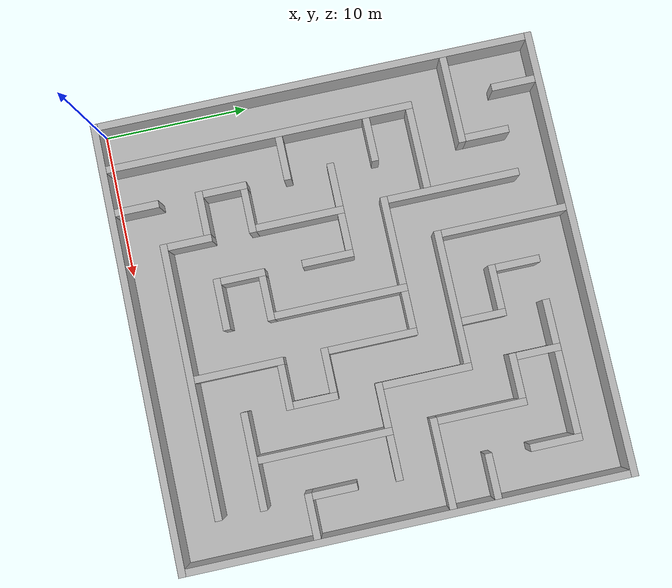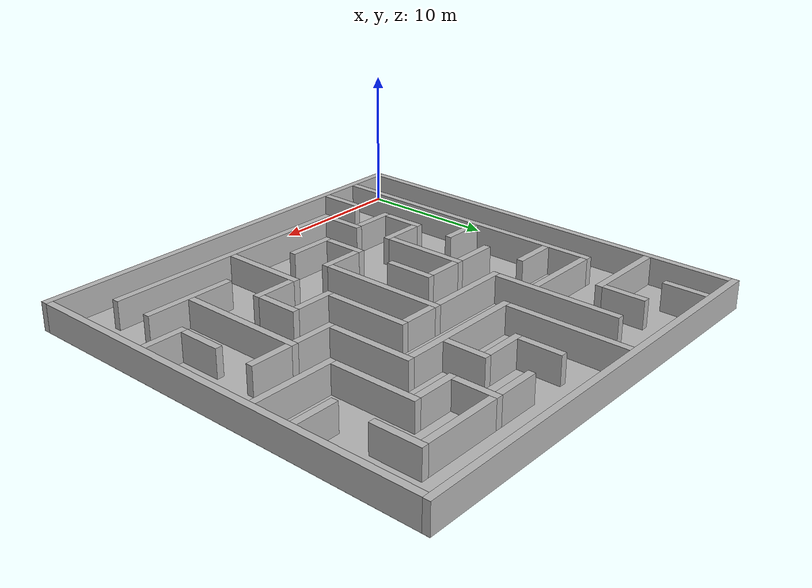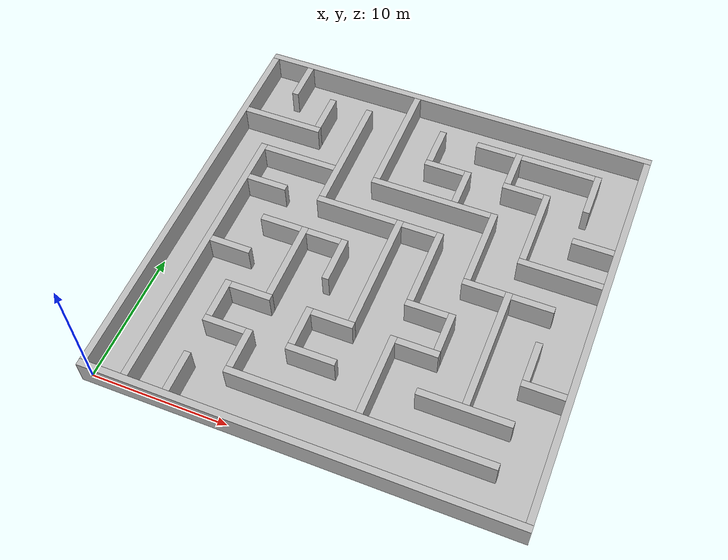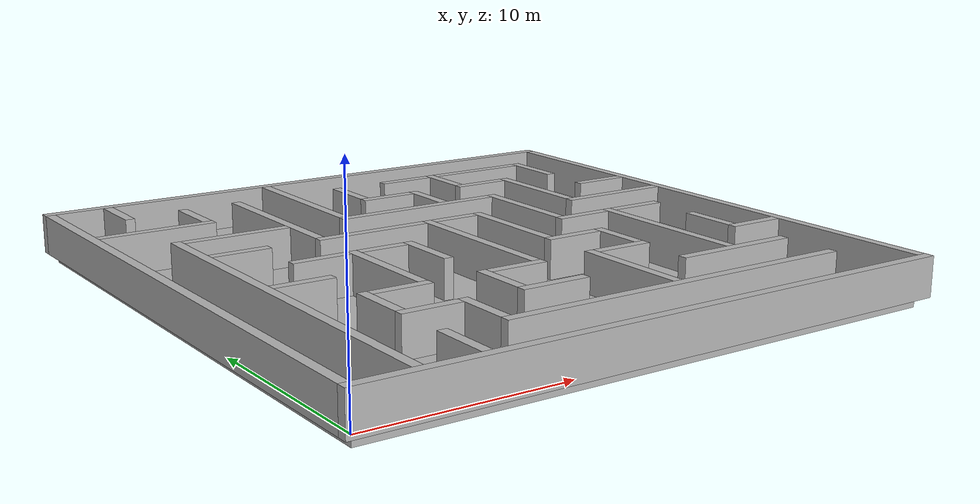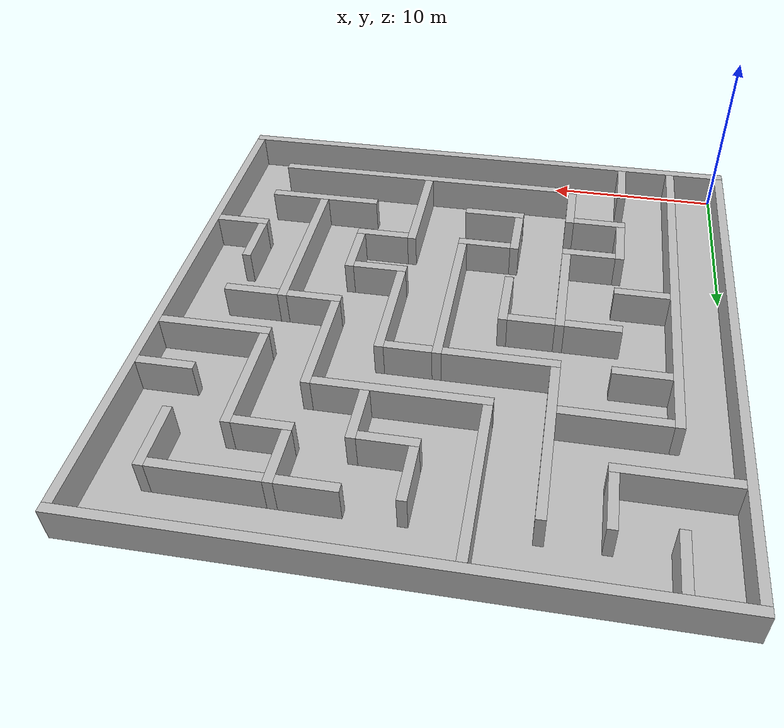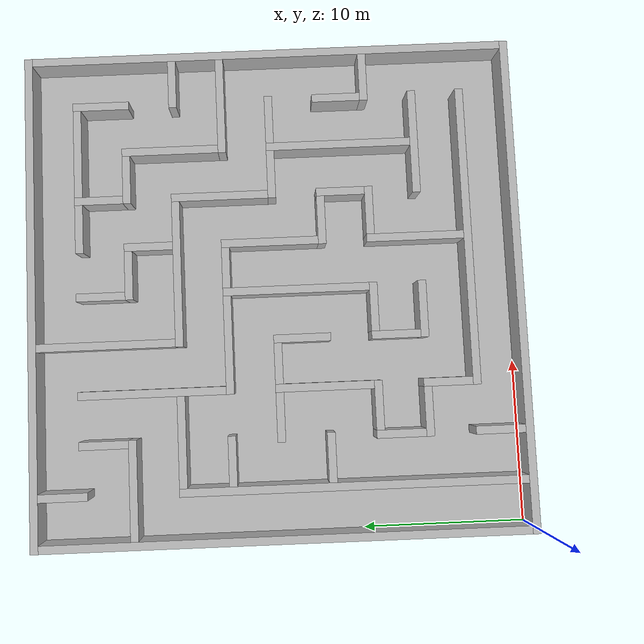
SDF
<?xml version="1.0" ?>
<sdf version="1.7">
  <world name="03_maze_wide">
    <gravity>0 0 -9.8</gravity>
    <include>
      <uri>model://sun</uri>
    </include>

    <model name="ground_plane_custom">
      <static>true</static>
      <pose>15.000000 15.000000 -0.250000 0 0 0</pose>
      <link name="link">
        <collision name="collision">
          <geometry>
            <box>
              <size>30.000000 30.000000 0.500000</size>
            </box>
          </geometry>
        </collision>
        <visual name="visual">
          <geometry>
            <box>
              <size>30.000000 30.000000 0.500000</size>
            </box>
          </geometry>
        </visual>
      </link>
    </model>

    <model name="outer_wall_bottom">
      <static>true</static>
      <pose>15.000000 -0.250000 1.000000 0 0 0</pose>
      <link name="link">
        <collision name="collision">
          <geometry>
            <box>
              <size>31.000000 0.500000 2.000000</size>
            </box>
          </geometry>
        </collision>
        <visual name="visual">
          <geometry>
            <box>
              <size>31.000000 0.500000 2.000000</size>
            </box>
          </geometry>
        </visual>
      </link>
    </model>
    <model name="outer_wall_top">
      <static>true</static>
      <pose>15.000000 30.250000 1.000000 0 0 0</pose>
      <link name="link">
        <collision name="collision">
          <geometry>
            <box>
              <size>31.000000 0.500000 2.000000</size>
            </box>
          </geometry>
        </collision>
        <visual name="visual">
          <geometry>
            <box>
              <size>31.000000 0.500000 2.000000</size>
            </box>
          </geometry>
        </visual>
      </link>
    </model>
    <model name="outer_wall_left">
      <static>true</static>
      <pose>-0.250000 15.000000 1.000000 0 0 0</pose>
      <link name="link">
        <collision name="collision">
          <geometry>
            <box>
              <size>0.500000 30.000000 2.000000</size>
            </box>
          </geometry>
        </collision>
        <visual name="visual">
          <geometry>
            <box>
              <size>0.500000 30.000000 2.000000</size>
            </box>
          </geometry>
        </visual>
      </link>
    </model>
    <model name="outer_wall_right">
      <static>true</static>
      <pose>30.250000 15.000000 1.000000 0 0 0</pose>
      <link name="link">
        <collision name="collision">
          <geometry>
            <box>
              <size>0.500000 30.000000 2.000000</size>
            </box>
          </geometry>
        </collision>
        <visual name="visual">
          <geometry>
            <box>
              <size>0.500000 30.000000 2.000000</size>
            </box>
          </geometry>
        </visual>
      </link>
    </model>
    <model name="maze_wall_0">
      <static>true</static>
      <pose>2.800000 10.675000 1.000000 0 0 0</pose>
      <link name="link">
        <collision name="collision">
          <geometry>
            <box>
              <size>0.500000 21.350000 2.000000</size>
            </box>
          </geometry>
        </collision>
        <visual name="visual">
          <geometry>
            <box>
              <size>0.500000 21.350000 2.000000</size>
            </box>
          </geometry>
        </visual>
      </link>
    </model>
    <model name="maze_wall_1">
      <static>true</static>
      <pose>5.850000 1.525000 1.000000 0 0 0</pose>
      <link name="link">
        <collision name="collision">
          <geometry>
            <box>
              <size>0.500000 3.050000 2.000000</size>
            </box>
          </geometry>
        </collision>
        <visual name="visual">
          <geometry>
            <box>
              <size>0.500000 3.050000 2.000000</size>
            </box>
          </geometry>
        </visual>
      </link>
    </model>
    <model name="maze_wall_2">
      <static>true</static>
      <pose>18.050000 2.800000 1.000000 0 0 0</pose>
      <link name="link">
        <collision name="collision">
          <geometry>
            <box>
              <size>18.800000 0.500000 2.000000</size>
            </box>
          </geometry>
        </collision>
        <visual name="visual">
          <geometry>
            <box>
              <size>18.800000 0.500000 2.000000</size>
            </box>
          </geometry>
        </visual>
      </link>
    </model>
    <model name="maze_wall_3">
      <static>true</static>
      <pose>8.900000 4.575000 1.000000 0 0 0</pose>
      <link name="link">
        <collision name="collision">
          <geometry>
            <box>
              <size>0.500000 3.050000 2.000000</size>
            </box>
          </geometry>
        </collision>
        <visual name="visual">
          <geometry>
            <box>
              <size>0.500000 3.050000 2.000000</size>
            </box>
          </geometry>
        </visual>
      </link>
    </model>
    <model name="maze_wall_4">
      <static>true</static>
      <pose>18.050000 6.100000 1.000000 0 0 0</pose>
      <link name="link">
        <collision name="collision">
          <geometry>
            <box>
              <size>0.500000 6.100000 2.000000</size>
            </box>
          </geometry>
        </collision>
        <visual name="visual">
          <geometry>
            <box>
              <size>0.500000 6.100000 2.000000</size>
            </box>
          </geometry>
        </visual>
      </link>
    </model>
    <model name="maze_wall_5">
      <static>true</static>
      <pose>7.125000 5.850000 1.000000 0 0 0</pose>
      <link name="link">
        <collision name="collision">
          <geometry>
            <box>
              <size>3.050000 0.500000 2.000000</size>
            </box>
          </geometry>
        </collision>
        <visual name="visual">
          <geometry>
            <box>
              <size>3.050000 0.500000 2.000000</size>
            </box>
          </geometry>
        </visual>
      </link>
    </model>
    <model name="maze_wall_6">
      <static>true</static>
      <pose>13.475000 5.850000 1.000000 0 0 0</pose>
      <link name="link">
        <collision name="collision">
          <geometry>
            <box>
              <size>3.550000 0.500000 2.000000</size>
            </box>
          </geometry>
        </collision>
        <visual name="visual">
          <geometry>
            <box>
              <size>3.550000 0.500000 2.000000</size>
            </box>
          </geometry>
        </visual>
      </link>
    </model>
    <model name="maze_wall_7">
      <static>true</static>
      <pose>24.150000 5.850000 1.000000 0 0 0</pose>
      <link name="link">
        <collision name="collision">
          <geometry>
            <box>
              <size>6.600000 0.500000 2.000000</size>
            </box>
          </geometry>
        </collision>
        <visual name="visual">
          <geometry>
            <box>
              <size>6.600000 0.500000 2.000000</size>
            </box>
          </geometry>
        </visual>
      </link>
    </model>
    <model name="maze_wall_8">
      <static>true</static>
      <pose>5.850000 7.625000 1.000000 0 0 0</pose>
      <link name="link">
        <collision name="collision">
          <geometry>
            <box>
              <size>0.500000 3.050000 2.000000</size>
            </box>
          </geometry>
        </collision>
        <visual name="visual">
          <geometry>
            <box>
              <size>0.500000 3.050000 2.000000</size>
            </box>
          </geometry>
        </visual>
      </link>
    </model>
    <model name="maze_wall_9">
      <static>true</static>
      <pose>11.950000 7.625000 1.000000 0 0 0</pose>
      <link name="link">
        <collision name="collision">
          <geometry>
            <box>
              <size>0.500000 3.050000 2.000000</size>
            </box>
          </geometry>
        </collision>
        <visual name="visual">
          <geometry>
            <box>
              <size>0.500000 3.050000 2.000000</size>
            </box>
          </geometry>
        </visual>
      </link>
    </model>
    <model name="maze_wall_10">
      <static>true</static>
      <pose>24.150000 10.675000 1.000000 0 0 0</pose>
      <link name="link">
        <collision name="collision">
          <geometry>
            <box>
              <size>0.500000 9.150000 2.000000</size>
            </box>
          </geometry>
        </collision>
        <visual name="visual">
          <geometry>
            <box>
              <size>0.500000 9.150000 2.000000</size>
            </box>
          </geometry>
        </visual>
      </link>
    </model>
    <model name="maze_wall_11">
      <static>true</static>
      <pose>7.625000 8.900000 1.000000 0 0 0</pose>
      <link name="link">
        <collision name="collision">
          <geometry>
            <box>
              <size>3.050000 0.500000 2.000000</size>
            </box>
          </geometry>
        </collision>
        <visual name="visual">
          <geometry>
            <box>
              <size>3.050000 0.500000 2.000000</size>
            </box>
          </geometry>
        </visual>
      </link>
    </model>
    <model name="maze_wall_12">
      <static>true</static>
      <pose>13.725000 8.900000 1.000000 0 0 0</pose>
      <link name="link">
        <collision name="collision">
          <geometry>
            <box>
              <size>3.050000 0.500000 2.000000</size>
            </box>
          </geometry>
        </collision>
        <visual name="visual">
          <geometry>
            <box>
              <size>3.050000 0.500000 2.000000</size>
            </box>
          </geometry>
        </visual>
      </link>
    </model>
    <model name="maze_wall_13">
      <static>true</static>
      <pose>19.825000 8.900000 1.000000 0 0 0</pose>
      <link name="link">
        <collision name="collision">
          <geometry>
            <box>
              <size>3.050000 0.500000 2.000000</size>
            </box>
          </geometry>
        </collision>
        <visual name="visual">
          <geometry>
            <box>
              <size>3.050000 0.500000 2.000000</size>
            </box>
          </geometry>
        </visual>
      </link>
    </model>
    <model name="maze_wall_14">
      <static>true</static>
      <pose>28.475000 8.900000 1.000000 0 0 0</pose>
      <link name="link">
        <collision name="collision">
          <geometry>
            <box>
              <size>3.050000 0.500000 2.000000</size>
            </box>
          </geometry>
        </collision>
        <visual name="visual">
          <geometry>
            <box>
              <size>3.050000 0.500000 2.000000</size>
            </box>
          </geometry>
        </visual>
      </link>
    </model>
    <model name="maze_wall_15">
      <static>true</static>
      <pose>8.900000 12.200000 1.000000 0 0 0</pose>
      <link name="link">
        <collision name="collision">
          <geometry>
            <box>
              <size>0.500000 6.100000 2.000000</size>
            </box>
          </geometry>
        </collision>
        <visual name="visual">
          <geometry>
            <box>
              <size>0.500000 6.100000 2.000000</size>
            </box>
          </geometry>
        </visual>
      </link>
    </model>
    <model name="maze_wall_16">
      <static>true</static>
      <pose>15.000000 13.725000 1.000000 0 0 0</pose>
      <link name="link">
        <collision name="collision">
          <geometry>
            <box>
              <size>0.500000 9.150000 2.000000</size>
            </box>
          </geometry>
        </collision>
        <visual name="visual">
          <geometry>
            <box>
              <size>0.500000 9.150000 2.000000</size>
            </box>
          </geometry>
        </visual>
      </link>
    </model>
    <model name="maze_wall_17">
      <static>true</static>
      <pose>21.100000 10.675000 1.000000 0 0 0</pose>
      <link name="link">
        <collision name="collision">
          <geometry>
            <box>
              <size>0.500000 3.050000 2.000000</size>
            </box>
          </geometry>
        </collision>
        <visual name="visual">
          <geometry>
            <box>
              <size>0.500000 3.050000 2.000000</size>
            </box>
          </geometry>
        </visual>
      </link>
    </model>
    <model name="maze_wall_18">
      <static>true</static>
      <pose>27.200000 10.675000 1.000000 0 0 0</pose>
      <link name="link">
        <collision name="collision">
          <geometry>
            <box>
              <size>0.500000 3.050000 2.000000</size>
            </box>
          </geometry>
        </collision>
        <visual name="visual">
          <geometry>
            <box>
              <size>0.500000 3.050000 2.000000</size>
            </box>
          </geometry>
        </visual>
      </link>
    </model>
    <model name="maze_wall_19">
      <static>true</static>
      <pose>4.575000 11.950000 1.000000 0 0 0</pose>
      <link name="link">
        <collision name="collision">
          <geometry>
            <box>
              <size>3.050000 0.500000 2.000000</size>
            </box>
          </geometry>
        </collision>
        <visual name="visual">
          <geometry>
            <box>
              <size>3.050000 0.500000 2.000000</size>
            </box>
          </geometry>
        </visual>
      </link>
    </model>
    <model name="maze_wall_20">
      <static>true</static>
      <pose>11.950000 13.475000 1.000000 0 0 0</pose>
      <link name="link">
        <collision name="collision">
          <geometry>
            <box>
              <size>0.500000 3.550000 2.000000</size>
            </box>
          </geometry>
        </collision>
        <visual name="visual">
          <geometry>
            <box>
              <size>0.500000 3.550000 2.000000</size>
            </box>
          </geometry>
        </visual>
      </link>
    </model>
    <model name="maze_wall_21">
      <static>true</static>
      <pose>19.325000 11.950000 1.000000 0 0 0</pose>
      <link name="link">
        <collision name="collision">
          <geometry>
            <box>
              <size>3.050000 0.500000 2.000000</size>
            </box>
          </geometry>
        </collision>
        <visual name="visual">
          <geometry>
            <box>
              <size>3.050000 0.500000 2.000000</size>
            </box>
          </geometry>
        </visual>
      </link>
    </model>
    <model name="maze_wall_22">
      <static>true</static>
      <pose>18.050000 15.250000 1.000000 0 0 0</pose>
      <link name="link">
        <collision name="collision">
          <geometry>
            <box>
              <size>0.500000 6.100000 2.000000</size>
            </box>
          </geometry>
        </collision>
        <visual name="visual">
          <geometry>
            <box>
              <size>0.500000 6.100000 2.000000</size>
            </box>
          </geometry>
        </visual>
      </link>
    </model>
    <model name="maze_wall_23">
      <static>true</static>
      <pose>7.125000 15.000000 1.000000 0 0 0</pose>
      <link name="link">
        <collision name="collision">
          <geometry>
            <box>
              <size>3.050000 0.500000 2.000000</size>
            </box>
          </geometry>
        </collision>
        <visual name="visual">
          <geometry>
            <box>
              <size>3.050000 0.500000 2.000000</size>
            </box>
          </geometry>
        </visual>
      </link>
    </model>
    <model name="maze_wall_24">
      <static>true</static>
      <pose>10.425000 15.000000 1.000000 0 0 0</pose>
      <link name="link">
        <collision name="collision">
          <geometry>
            <box>
              <size>2.550000 0.500000 2.000000</size>
            </box>
          </geometry>
        </collision>
        <visual name="visual">
          <geometry>
            <box>
              <size>2.550000 0.500000 2.000000</size>
            </box>
          </geometry>
        </visual>
      </link>
    </model>
    <model name="maze_wall_25">
      <static>true</static>
      <pose>22.375000 15.000000 1.000000 0 0 0</pose>
      <link name="link">
        <collision name="collision">
          <geometry>
            <box>
              <size>3.050000 0.500000 2.000000</size>
            </box>
          </geometry>
        </collision>
        <visual name="visual">
          <geometry>
            <box>
              <size>3.050000 0.500000 2.000000</size>
            </box>
          </geometry>
        </visual>
      </link>
    </model>
    <model name="maze_wall_26">
      <static>true</static>
      <pose>25.925000 15.000000 1.000000 0 0 0</pose>
      <link name="link">
        <collision name="collision">
          <geometry>
            <box>
              <size>3.050000 0.500000 2.000000</size>
            </box>
          </geometry>
        </collision>
        <visual name="visual">
          <geometry>
            <box>
              <size>3.050000 0.500000 2.000000</size>
            </box>
          </geometry>
        </visual>
      </link>
    </model>
    <model name="maze_wall_27">
      <static>true</static>
      <pose>21.100000 18.300000 1.000000 0 0 0</pose>
      <link name="link">
        <collision name="collision">
          <geometry>
            <box>
              <size>0.500000 6.100000 2.000000</size>
            </box>
          </geometry>
        </collision>
        <visual name="visual">
          <geometry>
            <box>
              <size>0.500000 6.100000 2.000000</size>
            </box>
          </geometry>
        </visual>
      </link>
    </model>
    <model name="maze_wall_28">
      <static>true</static>
      <pose>4.575000 18.050000 1.000000 0 0 0</pose>
      <link name="link">
        <collision name="collision">
          <geometry>
            <box>
              <size>3.050000 0.500000 2.000000</size>
            </box>
          </geometry>
        </collision>
        <visual name="visual">
          <geometry>
            <box>
              <size>3.050000 0.500000 2.000000</size>
            </box>
          </geometry>
        </visual>
      </link>
    </model>
    <model name="maze_wall_29">
      <static>true</static>
      <pose>11.700000 18.050000 1.000000 0 0 0</pose>
      <link name="link">
        <collision name="collision">
          <geometry>
            <box>
              <size>6.100000 0.500000 2.000000</size>
            </box>
          </geometry>
        </collision>
        <visual name="visual">
          <geometry>
            <box>
              <size>6.100000 0.500000 2.000000</size>
            </box>
          </geometry>
        </visual>
      </link>
    </model>
    <model name="maze_wall_30">
      <static>true</static>
      <pose>16.525000 18.050000 1.000000 0 0 0</pose>
      <link name="link">
        <collision name="collision">
          <geometry>
            <box>
              <size>2.550000 0.500000 2.000000</size>
            </box>
          </geometry>
        </collision>
        <visual name="visual">
          <geometry>
            <box>
              <size>2.550000 0.500000 2.000000</size>
            </box>
          </geometry>
        </visual>
      </link>
    </model>
    <model name="maze_wall_31">
      <static>true</static>
      <pose>26.950000 18.050000 1.000000 0 0 0</pose>
      <link name="link">
        <collision name="collision">
          <geometry>
            <box>
              <size>6.100000 0.500000 2.000000</size>
            </box>
          </geometry>
        </collision>
        <visual name="visual">
          <geometry>
            <box>
              <size>6.100000 0.500000 2.000000</size>
            </box>
          </geometry>
        </visual>
      </link>
    </model>
    <model name="maze_wall_32">
      <static>true</static>
      <pose>8.900000 22.875000 1.000000 0 0 0</pose>
      <link name="link">
        <collision name="collision">
          <geometry>
            <box>
              <size>0.500000 9.150000 2.000000</size>
            </box>
          </geometry>
        </collision>
        <visual name="visual">
          <geometry>
            <box>
              <size>0.500000 9.150000 2.000000</size>
            </box>
          </geometry>
        </visual>
      </link>
    </model>
    <model name="maze_wall_33">
      <static>true</static>
      <pose>24.150000 21.350000 1.000000 0 0 0</pose>
      <link name="link">
        <collision name="collision">
          <geometry>
            <box>
              <size>0.500000 6.100000 2.000000</size>
            </box>
          </geometry>
        </collision>
        <visual name="visual">
          <geometry>
            <box>
              <size>0.500000 6.100000 2.000000</size>
            </box>
          </geometry>
        </visual>
      </link>
    </model>
    <model name="maze_wall_34">
      <static>true</static>
      <pose>5.850000 21.100000 1.000000 0 0 0</pose>
      <link name="link">
        <collision name="collision">
          <geometry>
            <box>
              <size>5.600000 0.500000 2.000000</size>
            </box>
          </geometry>
        </collision>
        <visual name="visual">
          <geometry>
            <box>
              <size>5.600000 0.500000 2.000000</size>
            </box>
          </geometry>
        </visual>
      </link>
    </model>
    <model name="maze_wall_35">
      <static>true</static>
      <pose>16.275000 21.100000 1.000000 0 0 0</pose>
      <link name="link">
        <collision name="collision">
          <geometry>
            <box>
              <size>9.150000 0.500000 2.000000</size>
            </box>
          </geometry>
        </collision>
        <visual name="visual">
          <geometry>
            <box>
              <size>9.150000 0.500000 2.000000</size>
            </box>
          </geometry>
        </visual>
      </link>
    </model>
    <model name="maze_wall_36">
      <static>true</static>
      <pose>28.475000 21.100000 1.000000 0 0 0</pose>
      <link name="link">
        <collision name="collision">
          <geometry>
            <box>
              <size>3.050000 0.500000 2.000000</size>
            </box>
          </geometry>
        </collision>
        <visual name="visual">
          <geometry>
            <box>
              <size>3.050000 0.500000 2.000000</size>
            </box>
          </geometry>
        </visual>
      </link>
    </model>
    <model name="maze_wall_37">
      <static>true</static>
      <pose>11.950000 25.675000 1.000000 0 0 0</pose>
      <link name="link">
        <collision name="collision">
          <geometry>
            <box>
              <size>0.500000 8.650000 2.000000</size>
            </box>
          </geometry>
        </collision>
        <visual name="visual">
          <geometry>
            <box>
              <size>0.500000 8.650000 2.000000</size>
            </box>
          </geometry>
        </visual>
      </link>
    </model>
    <model name="maze_wall_38">
      <static>true</static>
      <pose>18.050000 22.875000 1.000000 0 0 0</pose>
      <link name="link">
        <collision name="collision">
          <geometry>
            <box>
              <size>0.500000 3.050000 2.000000</size>
            </box>
          </geometry>
        </collision>
        <visual name="visual">
          <geometry>
            <box>
              <size>0.500000 3.050000 2.000000</size>
            </box>
          </geometry>
        </visual>
      </link>
    </model>
    <model name="maze_wall_39">
      <static>true</static>
      <pose>3.050000 24.150000 1.000000 0 0 0</pose>
      <link name="link">
        <collision name="collision">
          <geometry>
            <box>
              <size>6.100000 0.500000 2.000000</size>
            </box>
          </geometry>
        </collision>
        <visual name="visual">
          <geometry>
            <box>
              <size>6.100000 0.500000 2.000000</size>
            </box>
          </geometry>
        </visual>
      </link>
    </model>
    <model name="maze_wall_40">
      <static>true</static>
      <pose>16.275000 24.150000 1.000000 0 0 0</pose>
      <link name="link">
        <collision name="collision">
          <geometry>
            <box>
              <size>3.050000 0.500000 2.000000</size>
            </box>
          </geometry>
        </collision>
        <visual name="visual">
          <geometry>
            <box>
              <size>3.050000 0.500000 2.000000</size>
            </box>
          </geometry>
        </visual>
      </link>
    </model>
    <model name="maze_wall_41">
      <static>true</static>
      <pose>22.375000 24.150000 1.000000 0 0 0</pose>
      <link name="link">
        <collision name="collision">
          <geometry>
            <box>
              <size>3.050000 0.500000 2.000000</size>
            </box>
          </geometry>
        </collision>
        <visual name="visual">
          <geometry>
            <box>
              <size>3.050000 0.500000 2.000000</size>
            </box>
          </geometry>
        </visual>
      </link>
    </model>
    <model name="maze_wall_42">
      <static>true</static>
      <pose>27.200000 25.675000 1.000000 0 0 0</pose>
      <link name="link">
        <collision name="collision">
          <geometry>
            <box>
              <size>0.500000 3.550000 2.000000</size>
            </box>
          </geometry>
        </collision>
        <visual name="visual">
          <geometry>
            <box>
              <size>0.500000 3.550000 2.000000</size>
            </box>
          </geometry>
        </visual>
      </link>
    </model>
    <model name="maze_wall_43">
      <static>true</static>
      <pose>5.850000 25.925000 1.000000 0 0 0</pose>
      <link name="link">
        <collision name="collision">
          <geometry>
            <box>
              <size>0.500000 3.050000 2.000000</size>
            </box>
          </geometry>
        </collision>
        <visual name="visual">
          <geometry>
            <box>
              <size>0.500000 3.050000 2.000000</size>
            </box>
          </geometry>
        </visual>
      </link>
    </model>
    <model name="maze_wall_44">
      <static>true</static>
      <pose>15.000000 25.925000 1.000000 0 0 0</pose>
      <link name="link">
        <collision name="collision">
          <geometry>
            <box>
              <size>0.500000 3.050000 2.000000</size>
            </box>
          </geometry>
        </collision>
        <visual name="visual">
          <geometry>
            <box>
              <size>0.500000 3.050000 2.000000</size>
            </box>
          </geometry>
        </visual>
      </link>
    </model>
    <model name="maze_wall_45">
      <static>true</static>
      <pose>21.100000 25.925000 1.000000 0 0 0</pose>
      <link name="link">
        <collision name="collision">
          <geometry>
            <box>
              <size>0.500000 3.050000 2.000000</size>
            </box>
          </geometry>
        </collision>
        <visual name="visual">
          <geometry>
            <box>
              <size>0.500000 3.050000 2.000000</size>
            </box>
          </geometry>
        </visual>
      </link>
    </model>
    <model name="maze_wall_46">
      <static>true</static>
      <pose>2.800000 28.475000 1.000000 0 0 0</pose>
      <link name="link">
        <collision name="collision">
          <geometry>
            <box>
              <size>0.500000 3.050000 2.000000</size>
            </box>
          </geometry>
        </collision>
        <visual name="visual">
          <geometry>
            <box>
              <size>0.500000 3.050000 2.000000</size>
            </box>
          </geometry>
        </visual>
      </link>
    </model>
    <model name="maze_wall_47">
      <static>true</static>
      <pose>19.325000 27.200000 1.000000 0 0 0</pose>
      <link name="link">
        <collision name="collision">
          <geometry>
            <box>
              <size>3.050000 0.500000 2.000000</size>
            </box>
          </geometry>
        </collision>
        <visual name="visual">
          <geometry>
            <box>
              <size>3.050000 0.500000 2.000000</size>
            </box>
          </geometry>
        </visual>
      </link>
    </model>
    <model name="maze_wall_48">
      <static>true</static>
      <pose>24.150000 27.200000 1.000000 0 0 0</pose>
      <link name="link">
        <collision name="collision">
          <geometry>
            <box>
              <size>5.600000 0.500000 2.000000</size>
            </box>
          </geometry>
        </collision>
        <visual name="visual">
          <geometry>
            <box>
              <size>5.600000 0.500000 2.000000</size>
            </box>
          </geometry>
        </visual>
      </link>
    </model>
  </world>
</sdf>
